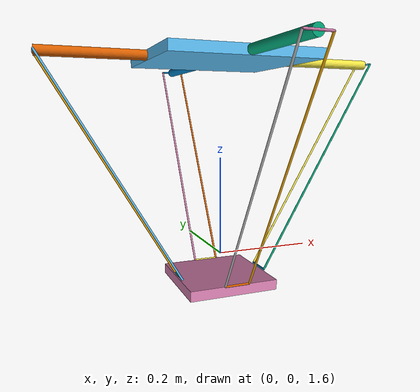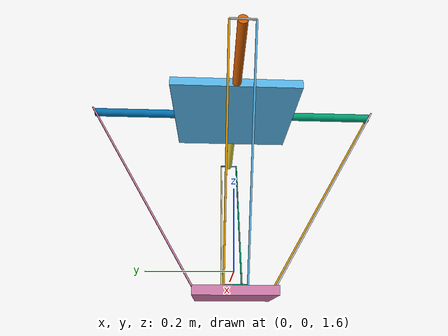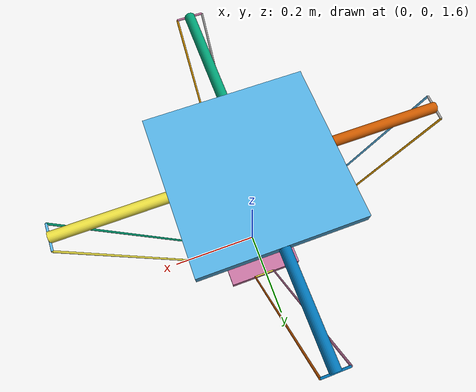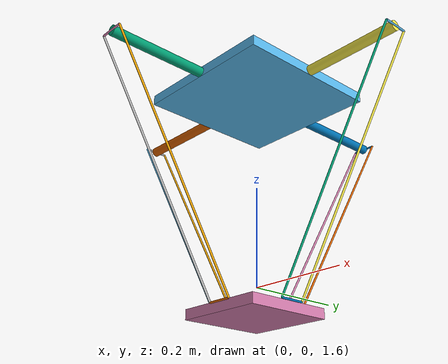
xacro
<?xml version="1.0" ?>
<robot name="quattro" xmlns:xacro="http://ros.org/wiki/xacro">
  <xacro:property name="PI" value="3.1415926535897931"/>
  <xacro:property name="width" value="0.01" /> <!-- all links -->

  <xacro:property name="width_m" value="0.02" /> <!-- all links -->
  <xacro:property name="length_m" value="0.18" /> <!-- all links -->

  <xacro:property name="distance_ground" value="2" /> <!-- distance -->
  <xacro:property name="mass_base" value="0.48" /> <!-- base mass-->
  <xacro:property name="mass_low_base" value="0.03" /> <!-- low base mass -->
  <xacro:property name="length_base" value="0.3" /> <!-- base length -->
  <xacro:property name="mass_uleg" value="0.0466" /> <!--upper leg mass-->
  <xacro:property name="length_uleg" value="0.2" /> <!-- upper leg length -->
  <xacro:property name="width_uleg" value="0.05" /> <!-- upper leg width -->
  <xacro:property name="radius_uleg" value="0.01" /> <!-- upper leg width -->

  <xacro:property name="mass_lleg" value="0.04" /> <!-- low leg mass-->
  <xacro:property name="length_lleg" value="0.51" /> <!-- low leg length-->
  <xacro:property name="width_lleg" value="0.002" /> <!-- low leg width -->
  <xacro:property name="mass_con" value="0.0173" /> <!-- connector mass-->

  <xacro:property name="namespace" value="quattro" />

  <xacro:macro name="default_inertial2" params="mass length width">
	 <inertia ixx="${1/12*mass*(width*width+length*length)}" ixy="0.0" ixz="0.0"
	  	  iyy="${1/12*mass*(width*width+length*length)}" iyz="0.0"
	 	  izz="${1/12*mass*(width*width+width*width)}"/>
  </xacro:macro>
  <xacro:macro name="default_inertial3" params="mass length width">
	 <inertia ixx="${1/12*mass*(width*width+length*length)}" ixy="0.0" ixz="0.0"
	  	  iyy="${1/12*mass*(width*width+length*length)}" iyz="0.0"
	 	  izz="${1/12*mass*(length*length+length*length)}"/>
  </xacro:macro>

 <gazebo>
    <plugin name="my_plugin" filename="libcontact.so"/>
    <plugin filename="libgazebo_ros_control.so" name="gazebo_ros_control">
      <robotNamespace>/quattro</robotNamespace>
    </plugin>

    <self_collide>true</self_collide>
    <enable_wind>false</enable_wind>
 </gazebo>

  <link name="world"/>

  <joint name="base" type="fixed">
     <parent link="world"/>
     <child link="link_0"/>
     <axis xyz="0 0 0"/>
     <origin xyz="0 0 ${distance_ground}" rpy="0 0 0"/>
  </joint>
  <gazebo reference="world_to_base">
     <physics>
	<ode>
	  <provide_feedback>true</provide_feedback>
	</ode>
     </physics>
  </gazebo>

  <link name="link_0">
    <inertial>
       <origin xyz="-0.0 -0.0 -0.0" rpy="0 0 0"/>
       <mass value="${mass_base}"/>
       <xacro:default_inertial3 mass="${mass_base}" length="${length_base}" width="${width_m}" />
    </inertial>

    <visual>
      <origin xyz="0 0 0" rpy="0 0 0"/>
	<geometry>
           <box size="${length_base} ${length_base} ${width_m}" />
        </geometry>
    </visual>

    <collision>
      <origin xyz="0 0 0" rpy="0 0 0"/>
      <geometry>
          <box size="${length_base}  ${length_base} ${width_m}" />
      </geometry>
    </collision>
  </link>
  <gazebo reference="link_0">
    <visual>
       <material>
            <script>
              <uri>file://media/materials/scripts/gazebo.material</uri>
              <name>Gazebo/Red</name>
            </script>
       </material>
    </visual>
 </gazebo>

 <gazebo reference="uleg_1">
    <visual>
       <material>
          <script>
             <uri>file://media/materials/scripts/gazebo.material</uri>
             <name>Gazebo/Red</name>
          </script>
       </material>
    </visual>
 </gazebo>
 <gazebo reference="uleg_2">
    <visual>
       <material>
            <script>
              <uri>file://media/materials/scripts/gazebo.material</uri>
              <name>Gazebo/Red</name>
            </script>
       </material>
    </visual>
 </gazebo>
 <gazebo reference="uleg_3">
    <visual>
       <material>
            <script>
              <uri>file://media/materials/scripts/gazebo.material</uri>
              <name>Gazebo/Red</name>
            </script>
       </material>
    </visual>
  </gazebo>
  <gazebo reference="uleg_4">
    <visual>
       <material>
            <script>
              <uri>file://media/materials/scripts/gazebo.material</uri>
              <name>Gazebo/Red</name>
            </script>
       </material>
    </visual>
  </gazebo>
<gazebo reference="low_base">
   <visual>
       <material>
            <script>
              <uri>file://media/materials/scripts/gazebo.material</uri>
              <name>Gazebo/Red</name>
            </script>
       </material>
   </visual>
</gazebo>
<joint name="JOINT_1_ACT" type="revolute">
	<origin xyz="0 -${0.5 * length_base} 0" rpy="0 0 0"/>
	<parent link="link_0"/>
	<child link="uleg_1"/>
        <limit effort="20" velocity="1.0" lower="-0.5" upper="1.1" />
        <axis xyz="1 0 0"/>
</joint>

<joint name="JOINT_2_ACT" type="revolute">
	<origin xyz="${0.5 * length_base} 0 0" rpy="0 0 ${PI/2}"/>
	<parent link="link_0"/>
	<child link="uleg_2"/>
        <limit effort="20" velocity="1.0" lower="-0.5" upper="1.1" />
        <axis xyz="1 0 0"/>
</joint>

<joint name="JOINT_3_ACT" type="revolute">
	<origin xyz="0 ${0.5 * length_base} 0" rpy="0 0 ${PI}"/>
	<parent link="link_0"/>
	<child link="uleg_3"/>
        <limit effort="20" velocity="1.0" lower="-0.5" upper="1.1" />
        <axis xyz="1 0 0"/>
</joint>

<joint name="JOINT_4_ACT" type="revolute">
	<origin xyz="-${0.5 * length_base} 0 0" rpy="0 0 ${3*PI/2}"/>
	<parent link="link_0"/>
	<child link="uleg_4"/>
        <limit effort="20" velocity="1.0" lower="-0.5" upper="1.1" />
        <axis xyz="1 0 0"/>
</joint>

<link name="uleg_1">
    <inertial>
      <origin xyz="0 ${-length_uleg/2+width_uleg/2+0.004}  0 " rpy="${PI/2} 0 0"/>
      <mass value="${mass_uleg}"/>
      <xacro:default_inertial3 mass="${mass_uleg}" width="${length_uleg}" length="${width_uleg}" />
    </inertial>

    <visual>
      <origin xyz="0  ${-length_uleg/2}  0 " rpy="${PI/2} 0 0"/>
	<geometry>
           <cylinder length="${length_uleg}" radius="${radius_uleg}" />
        </geometry>
    </visual>
    <collision>
 	<origin xyz="0 ${-length_uleg/2} 0 " rpy="${PI/2} 0 0"/>
	<geometry>
            <cylinder length="${length_uleg}" radius="${radius_uleg}" />
        </geometry>
    </collision>
 </link>

<link name="uleg_2">
    <inertial>
      <origin xyz="0 ${-length_uleg/2+width_uleg/2+0.004}  0 " rpy="${PI/2} 0 0"/>
      <mass value="${mass_uleg}"/>
      <xacro:default_inertial3 mass="${mass_uleg}" width="${length_uleg}" length="${width_uleg}" />
    </inertial>

    <visual>
      <origin xyz="0 ${-length_uleg/2} 0 " rpy="${PI/2} 0 0"/>
	<geometry>
           <cylinder length="${length_uleg}" radius="${radius_uleg}" />
        </geometry>
    </visual>
    <collision>
 	<origin xyz="0 ${-length_uleg/2} 0 " rpy="${PI/2} 0 0"/>
	<geometry>
            <cylinder length="${length_uleg}" radius="${radius_uleg}" />
        </geometry>
    </collision>
 </link>
 <link name="uleg_3">
    <inertial>
      <origin xyz="0 ${-length_uleg/2+width_uleg/2+0.004}  0 " rpy="${PI/2} 0 0"/>
      <mass value="${mass_uleg}"/>
 	<xacro:default_inertial3 mass="${mass_uleg}" width="${length_uleg}" length="${width_uleg}" />
    </inertial>

    <visual>
      <origin xyz="0 ${-length_uleg/2} 0 " rpy="${PI/2} 0 0"/>
	<geometry>
            <cylinder length="${length_uleg}" radius="${radius_uleg}" />
        </geometry>
    </visual>
    <collision>
 	<origin xyz="0 ${-length_uleg/2} 0 " rpy="${PI/2} 0 0"/>
	<geometry>
            <cylinder length="${length_uleg}" radius="${radius_uleg}" />
        </geometry>
    </collision>
 </link>

 <link name="uleg_4">
    <inertial>
      <origin xyz="0 ${-length_uleg/2+width_uleg/2+0.004}  0 " rpy="${PI/2} 0 0"/>
      <mass value="${mass_uleg}"/>
 	<xacro:default_inertial3 mass="${mass_uleg}" width="${length_uleg}" length="${width_uleg}" />
    </inertial>

    <visual>
      <origin xyz="0 ${-length_uleg/2} 0 " rpy="${PI/2} 0 0"/>
	<geometry>
            <cylinder length="${length_uleg}" radius="${radius_uleg}" />
        </geometry>
    </visual>
    <collision>
 	<origin xyz="0 ${-length_uleg/2} 0 " rpy="${PI/2} 0 0"/>
	<geometry>
            <cylinder length="${length_uleg}" radius="${radius_uleg}" />
        </geometry>
    </collision>
 </link>

<joint name="uleg1_con" type="continuous">
	 <origin xyz="0 -0.2 0" rpy="${PI/2-1.0358} 0 0"/>
	 <parent link="uleg_1"/>
	 <child link="con1"/>
         <axis xyz="1 0 0"/>
</joint>

<link name="con1">
    <inertial>
      <origin xyz="0.00 0 0 " rpy="0 ${PI/2} 0"/>
      <mass value="${mass_con}"/>
 	<xacro:default_inertial2 mass="${mass_con}" width="0.002" length="0.05" />
    </inertial>

    <visual>
      <origin xyz="0.00 0 0 " rpy="0 ${PI/2} 0"/>
      <geometry>
          <cylinder length="0.05" radius="0.002" />
      </geometry>
    </visual>
    <collision>
      <origin xyz="0.000 0 0 " rpy="0 ${PI/2} 0 "/>
      <geometry>
          <cylinder length="0.05" radius="0.002" />
      </geometry>
    </collision>
 </link>

 <joint name="con_lleg_1" type="continuous">
	<origin xyz="-0.025 0 0" rpy="0 0 0"/>
	 <parent link="con1"/>
	 <child link="lleg_1"/>
        <axis xyz="0 1 0"/>
 </joint>

<link name="lleg_1">
    <inertial>
      <origin xyz="0 0 ${-length_lleg/2} " rpy="0 0 0"/>
      <mass value="${mass_lleg}"/>
 	<xacro:default_inertial3 mass="${mass_lleg}" width="${length_lleg}" length="${width_lleg}" />
    </inertial>

    <visual>
      <origin xyz=" 0 0 ${-length_lleg/2} " rpy="0 0 0"/>
      <geometry>
          <cylinder length="${length_lleg}" radius="${width_lleg}" />
      </geometry>
    </visual>
    <collision>
 	<origin xyz="0 0 ${-length_lleg/2} " rpy="0 0 0 "/>
      <geometry>
          <cylinder length="${length_lleg}" radius="${width_lleg}" />
      </geometry>
    </collision>
 </link>

<joint name="con2_lleg_1" type="continuous">
	<origin xyz="0.025 0 0" rpy="0 0 0"/>
	 <parent link="con1"/>
	 <child link="lleg_12"/>
	<mimic joint="con_lleg_1"/>
        <axis xyz="0 1 0"/>
</joint>

<link name="lleg_12">
      <inertial>
      <origin xyz="0 0 ${-length_lleg/2} " rpy="0 0 0"/>
      <mass value="${mass_lleg}"/>
 	<xacro:default_inertial3 mass="${mass_lleg}" width="${length_lleg}" length="${width_lleg}" />
    </inertial>

    <visual>
      <origin xyz=" 0 0 ${-length_lleg/2} " rpy="0 0 0"/>
      <geometry>
          <cylinder length="${length_lleg}" radius="${width_lleg}" />
      </geometry>
    </visual>
    <collision>
 	<origin xyz="0 0 ${-length_lleg/2} " rpy="0 0 0 "/>
      <geometry>
          <cylinder length="${length_lleg}" radius="${width_lleg}" />
      </geometry>
    </collision>
 </link>

<joint name="uleg2_con" type="continuous">
	<origin xyz="0 -0.2 0" rpy="${PI/2-1.0358} 0 0"/>
	 <parent link="uleg_2"/>
	 <child link="con2"/>
        <axis xyz="1 0 0"/>
</joint>

<link name="con2">
    <inertial>
      <origin xyz="0.00 0 0 " rpy="0 ${PI/2} 0"/>
      <mass value="${mass_con}"/>
      <xacro:default_inertial2 mass="${mass_con}" width="0.002" length="0.05" />
    </inertial>

    <visual>
      <origin xyz="0.00 0 0 " rpy="0 ${PI/2} 0"/>
      <geometry>
          <cylinder length="0.05" radius="0.002" />
      </geometry>
    </visual>
    <collision>
      <origin xyz="0.00 0 0 " rpy="0 ${PI/2} 0 "/>
      <geometry>
          <cylinder length="0.05" radius="0.002" />
      </geometry>
    </collision>
 </link>

<joint name="con_lleg_2" type="continuous">
	<origin xyz="-0.025 0 0" rpy="0 0 0"/>
	 <parent link="con2"/>
	 <child link="lleg_2"/>
        <axis xyz="0 1 0"/>
</joint>

<link name="lleg_2">
      <inertial>
      <origin xyz="0 0 ${-length_lleg/2} " rpy="0 0 0"/>
      <mass value="${mass_lleg}"/>
 	<xacro:default_inertial3 mass="${mass_lleg}" width="${length_lleg}" length="${width_lleg}" />
    </inertial>

    <visual>
      <origin xyz=" 0 0 ${-length_lleg/2} " rpy="0 0 0"/>
      <geometry>
          <cylinder length="${length_lleg}" radius="${width_lleg}" />
      </geometry>
    </visual>
    <collision>
 	<origin xyz="0 0 ${-length_lleg/2} " rpy="0 0 0 "/>
      <geometry>
          <cylinder length="${length_lleg}" radius="${width_lleg}" />
      </geometry>
    </collision>
 </link>

<joint name="con2_lleg_2" type="continuous">
	<origin xyz="0.025 0 0" rpy="0 0 0"/>
	 <parent link="con2"/>
	 <child link="lleg_22"/>
         <mimic joint="con_lleg_2"/>
        <axis xyz="0 1 0"/>
</joint>

<link name="lleg_22">
      <inertial>
      <origin xyz="0 0 ${-length_lleg/2} " rpy="0 0 0"/>
      <mass value="${mass_lleg}"/>
 	<xacro:default_inertial3 mass="${mass_lleg}" width="${length_lleg}" length="${width_lleg}" />
    </inertial>

    <visual>
      <origin xyz=" 0 0 ${-length_lleg/2} " rpy="0 0 0"/>
      <geometry>
          <cylinder length="${length_lleg}" radius="${width_lleg}" />
      </geometry>
    </visual>
    <collision>
 	<origin xyz="0 0 ${-length_lleg/2} " rpy="0 0 0 "/>
      <geometry>
          <cylinder length="${length_lleg}" radius="${width_lleg}" />
      </geometry>
    </collision>
 </link>

<joint name="uleg3_con" type="continuous">
	<origin xyz="0 -0.2 0" rpy="${PI/2-1.0358} 0 0"/>
	 <parent link="uleg_3"/>
	 <child link="con3"/>
        <axis xyz="1 0 0"/>
</joint>

<link name="con3">
    <inertial>
      <origin xyz="0.00 0 0 " rpy="0 ${PI/2} 0"/>
      <mass value="${mass_con}"/>
      <xacro:default_inertial2 mass="${mass_con}" width="0.002" length="0.05" />
    </inertial>

    <visual>
      <origin xyz="0.00 0 0 " rpy="0 ${PI/2} 0"/>
      <geometry>
          <cylinder length="0.05" radius="0.002" />
      </geometry>
    </visual>
    <collision>
      <origin xyz="0.00 0 0 " rpy="0 ${PI/2} 0 "/>
      <geometry>
          <cylinder length="0.05" radius="0.002" />
      </geometry>
    </collision>
 </link>

<joint name="con_lleg_3" type="continuous">
	<origin xyz="-0.025 0 0" rpy="0 0 0"/>
	 <parent link="con3"/>
	 <child link="lleg_3"/>
        <axis xyz="0 1 0"/>
</joint>

<link name="lleg_3">
      <inertial>
      <origin xyz="0 0 ${-length_lleg/2} " rpy="0 0 0"/>
      <mass value="${mass_lleg}"/>
 	<xacro:default_inertial3 mass="${mass_lleg}" width="${length_lleg}" length="${width_lleg}" />
    </inertial>

    <visual>
      <origin xyz=" 0 0 ${-length_lleg/2} " rpy="0 0 0"/>
      <geometry>
          <cylinder length="${length_lleg}" radius="0.002" />
      </geometry>
    </visual>
    <collision>
 	<origin xyz="0 0 ${-length_lleg/2} " rpy="0 0 0 "/>
      <geometry>
          <cylinder length="${length_lleg}" radius="0.002" />
      </geometry>
    </collision>
 </link>

<joint name="con2_lleg_3" type="continuous">
	<origin xyz="0.025 0 0" rpy="0 0 0"/>
	 <parent link="con3"/>
	 <child link="lleg_32"/>
         <mimic joint="con_lleg_3"/>
        <axis xyz="0 1 0"/>
</joint>

<link name="lleg_32">
      <inertial>
      <origin xyz="0 0 ${-length_lleg/2} " rpy="0 0 0"/>
      <mass value="${mass_lleg}"/>
 	<xacro:default_inertial3 mass="${mass_lleg}" width="${length_lleg}" length="${width_lleg}" />
    </inertial>

    <visual>
      <origin xyz=" 0 0 ${-length_lleg/2} " rpy="0 0 0"/>
      <geometry>
          <cylinder length="${length_lleg}" radius="${width_lleg}" />
      </geometry>
    </visual>
    <collision>
 	<origin xyz="0 0 ${-length_lleg/2} " rpy="0 0 0 "/>
      <geometry>
          <cylinder length="${length_lleg}" radius="${width_lleg}" />
      </geometry>
    </collision>
 </link>

<joint name="uleg4_con" type="continuous">
	<origin xyz="0 -0.2 0" rpy="${PI/2-1.0358} 0 0"/>
	 <parent link="uleg_4"/>
	 <child link="con4"/>
        <axis xyz="1 0 0"/>
</joint>

<link name="con4">
    <inertial>
      <origin xyz="0.00 0 0 " rpy="0 ${PI/2} 0"/>
      <mass value="${mass_con}"/>
      <xacro:default_inertial2 mass="${mass_con}" width="0.002" length="0.05" />
    </inertial>

    <visual>
      <origin xyz="0.00 0 0 " rpy="0 ${PI/2} 0"/>
      <geometry>
          <cylinder length="0.05" radius="0.002" />
      </geometry>
    </visual>
    <collision>
      <origin xyz="0.00 0 0 " rpy="0 ${PI/2} 0 "/>
      <geometry>
          <cylinder length="0.05" radius="0.002" />
      </geometry>
    </collision>
 </link>

<joint name="con_lleg_4" type="continuous">
	<origin xyz="-0.025 0 0" rpy="0 0 0"/>
	 <parent link="con4"/>
	 <child link="lleg_4"/>
        <axis xyz="0 1 0"/>
</joint>

<link name="lleg_4">
      <inertial>
      <origin xyz="0 0 ${-length_lleg/2} " rpy="0 0 0"/>
      <mass value="${mass_lleg}"/>
 	<xacro:default_inertial3 mass="${mass_lleg}" width="${length_lleg}" length="${width_lleg}" />
    </inertial>

    <visual>
      <origin xyz=" 0 0 ${-length_lleg/2} " rpy="0 0 0"/>
      <geometry>
          <cylinder length="${length_lleg}" radius="0.002" />
      </geometry>
    </visual>
    <collision>
 	<origin xyz="0 0 ${-length_lleg/2} " rpy="0 0 0 "/>
      <geometry>
          <cylinder length="${length_lleg}" radius="0.002" />
      </geometry>
    </collision>
 </link>

<joint name="con2_lleg_4" type="continuous">
	<origin xyz="0.025 0 0" rpy="0 0 0"/>
	 <parent link="con4"/>
	 <child link="lleg_42"/>
         <mimic joint="con_lleg_4"/>
        <axis xyz="0 1 0"/>
</joint>

<link name="lleg_42">
      <inertial>
      <origin xyz="0 0 ${-length_lleg/2} " rpy="0 0 0"/>
      <mass value="${mass_lleg}"/>
 	<xacro:default_inertial3 mass="${mass_lleg}" width="${length_lleg}" length="${width_lleg}" />
    </inertial>

    <visual>
      <origin xyz=" 0 0 ${-length_lleg/2} " rpy="0 0 0"/>
      <geometry>
          <cylinder length="${length_lleg}" radius="${width_lleg}" />
      </geometry>
    </visual>
    <collision>
 	<origin xyz="0 0 ${-length_lleg/2} " rpy="0 0 0 "/>
      <geometry>
          <cylinder length="${length_lleg}" radius="${width_lleg}" />
      </geometry>
    </collision>
 </link>

<joint name="con43_lleg_4" type="continuous">
	<origin xyz="0 0 -0.51" rpy="0 0 0"/>
	 <parent link="lleg_42"/>
	 <child link="con43"/>
        <axis xyz="0 1 0"/>
</joint>

<link name="con43">
      <inertial>
      <origin xyz="-0.025  0 0 " rpy="0 ${PI/2} 0"/>
      <mass value="${mass_con}"/>
 	<xacro:default_inertial2 mass="${mass_con}" width="0.002" length="0.05" />
    </inertial>

    <visual>
      <origin xyz="-0.025 0 0  " rpy="0 ${PI/2} 0"/>
      <geometry>
          <cylinder length="0.05" radius="0.002" />
      </geometry>
    </visual>
    <collision>
 	<origin xyz="-0.025 0  0 " rpy="0 ${PI/2} 0 "/>
      <geometry>
          <cylinder length="0.05" radius="0.002" />
      </geometry>
    </collision>
 </link>

<joint name="con33_lleg_3" type="continuous">
	<origin xyz="0 0 -0.51" rpy="0 0 0"/>
	 <parent link="lleg_32"/>
	 <child link="con33"/>
        <axis xyz="0 1 0"/>
</joint>

<link name="con33">
      <inertial>
      <origin xyz="-0.025  0 0 " rpy="0 ${PI/2} 0"/>
      <mass value="${mass_con}"/>
 	<xacro:default_inertial2 mass="${mass_con}" width="0.002" length="0.05" />
    </inertial>

    <visual>
      <origin xyz="-0.025 0 0  " rpy="0 ${PI/2} 0"/>
      <geometry>
          <cylinder length="0.05" radius="0.002" />
      </geometry>
    </visual>
    <collision>
 	<origin xyz="-0.025 0  0 " rpy="0 ${PI/2} 0 "/>
      <geometry>
          <cylinder length="0.05" radius="0.002" />
      </geometry>
    </collision>
 </link>

<joint name="con23_lleg_2" type="continuous">
	<origin xyz="0 0 -0.51" rpy="0 0 0"/>
	 <parent link="lleg_22"/>
	 <child link="con23"/>
        <axis xyz="0 1 0"/>
</joint>

<link name="con23">
      <inertial>
      <origin xyz="-0.025  0 0 " rpy="0 ${PI/2} 0"/>
      <mass value="${mass_con}"/>
 	<xacro:default_inertial2 mass="${mass_con}" width="0.002" length="0.05" />
    </inertial>

    <visual>
      <origin xyz="-0.025 0 0  " rpy="0 ${PI/2} 0"/>
      <geometry>
          <cylinder length="0.05" radius="0.002" />
      </geometry>
    </visual>
    <collision>
 	<origin xyz="-0.025 0  0 " rpy="0 ${PI/2} 0 "/>
      <geometry>
          <cylinder length="0.05" radius="0.002" />
      </geometry>
    </collision>
 </link>

<joint name="con13_lleg_1" type="continuous">
	<origin xyz="0 0 -0.51" rpy="0 0 0"/>
	 <parent link="lleg_12"/>
	 <child link="con13"/>
        <axis xyz="0 1 0"/>
</joint>

<link name="con13">
      <inertial>
      <origin xyz="-0.025  0 0 " rpy="0 ${PI/2} 0"/>
      <mass value="${mass_con}"/>
 	<xacro:default_inertial2 mass="${mass_con}" width="0.002" length="0.05" />
    </inertial>

    <visual>
      <origin xyz="-0.025 0 0  " rpy="0 ${PI/2} 0"/>
      <geometry>
          <cylinder length="0.05" radius="0.002" />
      </geometry>
    </visual>
    <collision>
 	<origin xyz="-0.025 0  0 " rpy="0 ${PI/2} 0 "/>
      <geometry>
          <cylinder length="0.05" radius="0.002" />
      </geometry>
    </collision>
 </link>

<joint name='lleg1_base' type='continuous'>
	<origin xyz=" 0 0 0" rpy="-0.5350 0 0"/>
	 <parent link="con13"/>
	 <child link="low_base"/>
        <axis xyz="1 0 0"/>
</joint>

<link name='low_base'>
  <inertial>
     <origin xyz="${-length_m} ${length_m} 0" rpy="0 -0 0"/>
      <mass value="${mass_low_base}"/>
 	<xacro:default_inertial3 mass="${mass_low_base}" width="${length_m}" length="${length_m}" />
  </inertial>
  <visual name='low_base_visual'>
        <origin xyz="-0.03  ${length_m/2} ${-width_m/2}" rpy="0 -0 0"/>
	<geometry>
            <box size="${length_m} ${length_m} ${width_m}" />
        </geometry>
  </visual>
</link>

<gazebo>
   <joint name='lleg2_base' type='revolute'>
      <child>con23</child>
      <parent>low_base</parent>
      <pose> 0 0 0 0 0 0 </pose>
      <axis>
        <xyz>1 0 0</xyz>
        <limit>
          <lower>-100</lower>
          <upper>100</upper>
        </limit>
         <dynamics>
          <spring_reference>0</spring_reference>
          <spring_stiffness>0</spring_stiffness>
	  <damping>0.000000</damping>
          <friction>0.00030000</friction>
        </dynamics>
        <use_parent_model_frame>0</use_parent_model_frame>
      </axis>
   </joint>

  <joint name='lleg3_base' type='revolute'>
      <child>con33</child>
      <parent>low_base</parent>
      <pose> 0 0 0 0 0 0 </pose>
      <axis>
        <xyz>1 0 0</xyz>
        <limit>
          <lower>-100</lower>
          <upper>100</upper>
        </limit>
         <dynamics>
          <spring_reference>0</spring_reference>
          <spring_stiffness>0</spring_stiffness>
	  <damping>0.000000</damping>
          <friction>0.00030000</friction>
        </dynamics>
        <use_parent_model_frame>0</use_parent_model_frame>
      </axis>

    </joint>
    <joint name='lleg4_base' type='revolute'>
      <child>con43</child>
      <parent>low_base</parent>
      <pose> 0 0 0 0 0 0 </pose>
      <axis>
        <xyz>1 0 0</xyz>
        <limit>
          <lower>-100</lower>
          <upper>100</upper>
        </limit>
         <dynamics>
          <spring_reference>0</spring_reference>
          <spring_stiffness>0</spring_stiffness>
	  <damping>0.000000</damping>
          <friction>0.00030000</friction>
        </dynamics>
        <use_parent_model_frame>0</use_parent_model_frame>
      </axis>

    </joint>

    <joint name='con13_lleg_12' type='revolute'>
      <child>con13</child>
      <parent>lleg_1</parent>
      <pose> -0.05 0 0 0 0 0 </pose>
      <axis>
        <xyz>0 1 0</xyz>
        <limit>
          <lower>-100</lower>
          <upper>100</upper>
        </limit>
         <dynamics>
          <spring_reference>0</spring_reference>
          <spring_stiffness>0</spring_stiffness>
	  <damping>0.000000</damping>
          <friction>0.00030000</friction>
        </dynamics>
        <use_parent_model_frame>0</use_parent_model_frame>
      </axis>

    </joint>

    <joint name='con23_lleg_22' type='revolute'>
      <child>con23</child>
      <parent>lleg_2</parent>
      <pose> -0.05 0 0 0 0 0 </pose>
      <axis>
        <xyz>0 1 0</xyz>
        <limit>
          <lower>-100</lower>
          <upper>100</upper>
        </limit>
         <dynamics>
          <spring_reference>0</spring_reference>
          <spring_stiffness>0</spring_stiffness>
	  <damping>0.000000</damping>
          <friction>0.00030000</friction>
        </dynamics>
        <use_parent_model_frame>0</use_parent_model_frame>
      </axis>

    </joint>
    <joint name='con33_lleg_32' type='revolute'>
      <child>con33</child>
      <parent>lleg_3</parent>
      <pose> -0.05 0 0 0 0 0 </pose>
      <axis>
        <xyz>0 1 0</xyz>
        <limit>
          <lower>-100</lower>
          <upper>100</upper>
        </limit>
         <dynamics>
          <spring_reference>0</spring_reference>
          <spring_stiffness>0</spring_stiffness>
	  <damping>0.000000</damping>
          <friction>0.00030000</friction>
        </dynamics>
        <use_parent_model_frame>0</use_parent_model_frame>
      </axis>

    </joint>
    <joint name='con43_lleg_42' type='revolute'>
      <child>con43</child>
      <parent>lleg_4</parent>
      <pose> -0.05 0 0 0 0 0 </pose>
      <axis>
        <xyz>0 1 0</xyz>
        <limit>
          <lower>-100</lower>
          <upper>100</upper>
        </limit>
         <dynamics>
          <spring_reference>0</spring_reference>
          <spring_stiffness>0</spring_stiffness>
	  <damping>0.000000</damping>
          <friction>0.00030000</friction>
        </dynamics>
        <use_parent_model_frame>0</use_parent_model_frame>
      </axis>
    </joint>
</gazebo>

  <transmission name="tran1">
    <type>transmission_interface/SimpleTransmission</type>
    <joint name="JOINT_1_ACT">
      <hardwareInterface>hardware_interface/EffortJointInterface</hardwareInterface>
    </joint>
    <actuator name="motor1">
      <hardwareInterface>hardware_interface/EffortJointInterface</hardwareInterface>
      <mechanicalReduction>1</mechanicalReduction>
    </actuator>
  </transmission>

  <transmission name="tran2">
    <type>transmission_interface/SimpleTransmission</type>
    <joint name="JOINT_2_ACT">
      <hardwareInterface>hardware_interface/EffortJointInterface</hardwareInterface>
    </joint>
    <actuator name="motor2">
      <hardwareInterface>hardware_interface/EffortJointInterface</hardwareInterface>
      <mechanicalReduction>1</mechanicalReduction>
    </actuator>
  </transmission>

  <transmission name="tran3">
    <type>transmission_interface/SimpleTransmission</type>
    <joint name="JOINT_3_ACT">
      <hardwareInterface>hardware_interface/EffortJointInterface</hardwareInterface>
    </joint>
    <actuator name="motor3">
      <hardwareInterface>hardware_interface/EffortJointInterface</hardwareInterface>
      <mechanicalReduction>1</mechanicalReduction>
    </actuator>
  </transmission>

  <transmission name="tran4">
    <type>transmission_interface/SimpleTransmission</type>
    <joint name="JOINT_4_ACT">
      <hardwareInterface>hardware_interface/EffortJointInterface</hardwareInterface>
    </joint>
    <actuator name="motor4">
      <hardwareInterface>hardware_interface/EffortJointInterface</hardwareInterface>
      <mechanicalReduction>1</mechanicalReduction>
    </actuator>
  </transmission>

</robot>
